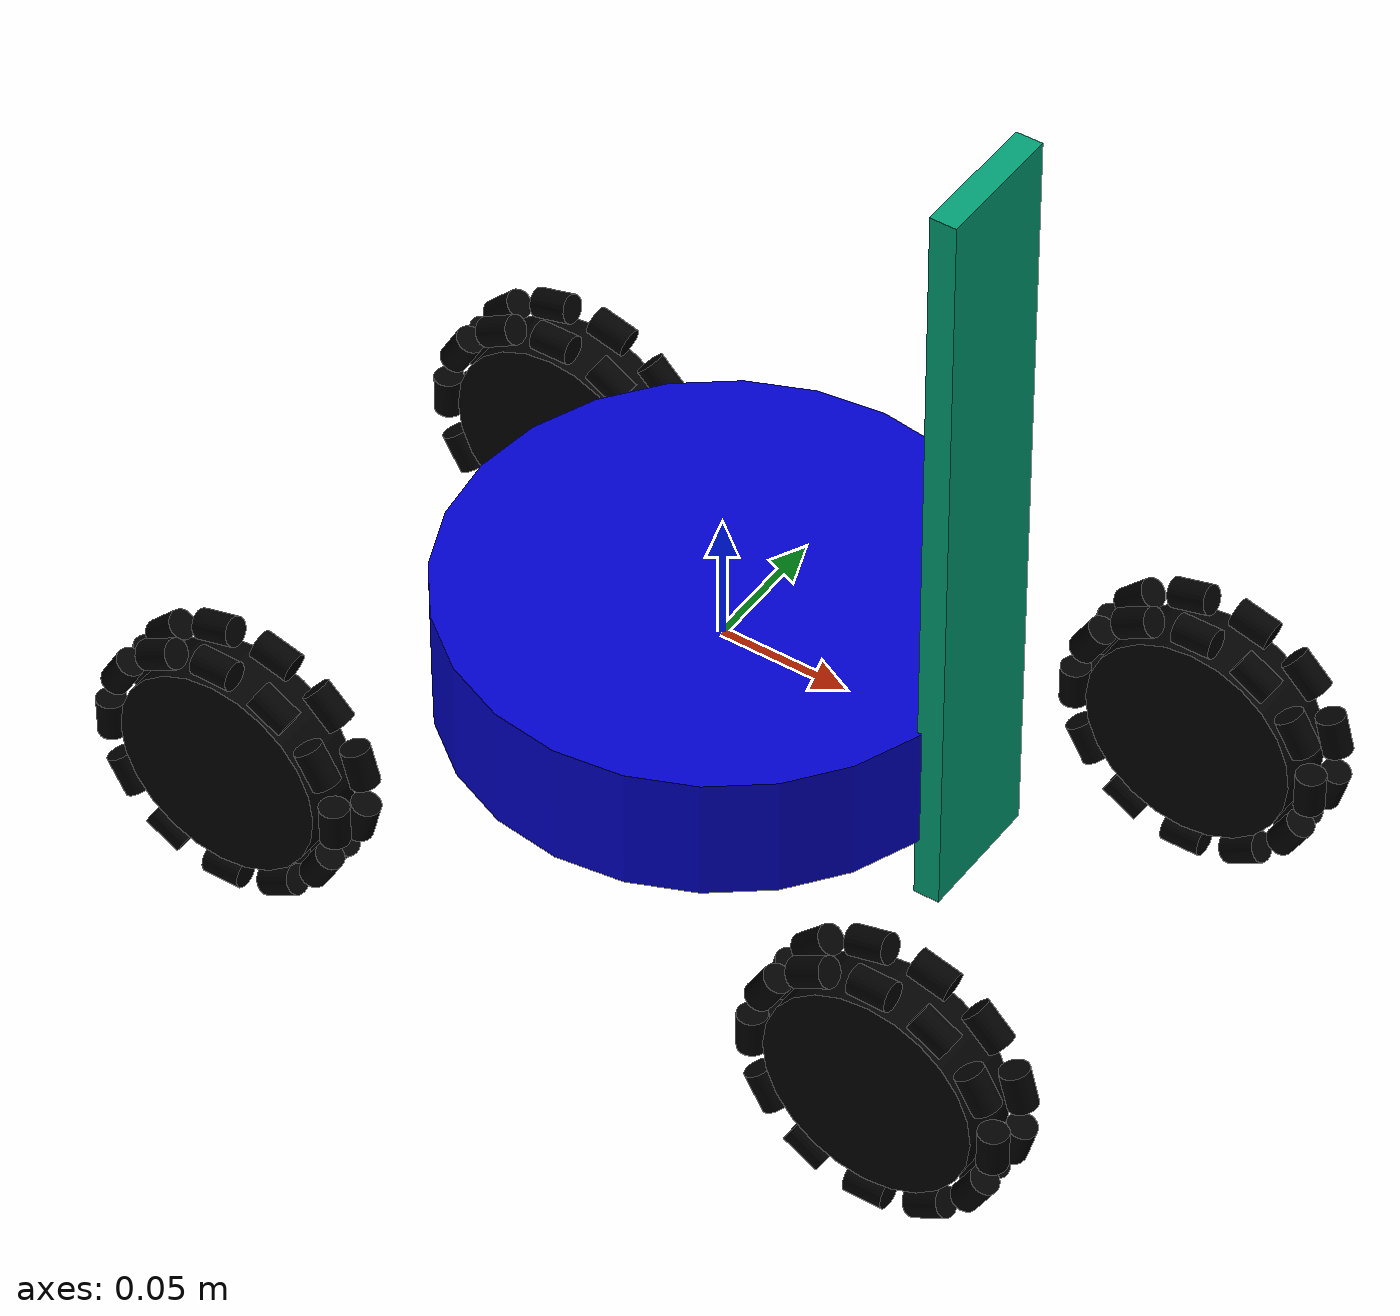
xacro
<?xml version="1.0"?>
<robot name="roscontrol" xmlns:xacro="http://ros.org/wiki/xacro">

    <link name="base_link"></link>

    <xacro:include filename="chassis.urdf.xacro"/>

    <joint name="chassis_joint" type="fixed">
        <parent link="base_link"/>
        <child link="chassis_link"/>
    </joint>

    <xacro:include filename="camera.urdf.xacro"/>

    <xacro:kinect prefix="front" origin_link="base_link" xyz="0.1 0 0.1" rpy="0 0 0"/>

</robot>

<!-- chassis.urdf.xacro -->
<robot name="chassis" xmlns:xacro="http://ros.org/wiki/xacro">
    <xacro:include filename="$(find gazebo_ros_motors)/xacro/dc_motor.xacro"/>

    <xacro:property name="width" value="0.1" />
    <xacro:property name="leglen" value="0.05" />
    <xacro:property name="bodylen" value="0.05" />
    <xacro:property name="baselen" value="0.4" />
    <xacro:property name="wheeldiam" value="0.082" />
    <xacro:property name="pi" value="3.1415" />

    <xacro:property name="wheel_radius" value="0.04" />
    <xacro:property name="wheel_width" value="0.025" />

    <xacro:property name="xyz" value="0 0 0"/>
    <xacro:property name="rpy" value="0 0 0"/>
    <xacro:property name="wheel_xyz" value="0 0 0"/>
    <xacro:property name="wheel_rpy" value="0 0 0"/>
    <xacro:property name="roller_xyz" value="0 .008 -.0465"/>
    <xacro:property name="roller_rpy" value="0 ${-pi/12} 0"/>

    <xacro:property name="roller_diameter" value="0.0055" />
    <xacro:property name="roller_width" value="0.015" />

    <xacro:property name="roller_side_length" value="0.0088"/>
    <xacro:property name="roller_radius" value=".0475"/>

    <material name="blue">
        <color rgba="0 0 0.8 1"/>
    </material>

    <material name="black">
        <color rgba="0 0 0 1"/>
    </material>

    <material name="white">
        <color rgba="1 1 1 1"/>
    </material>

    <xacro:macro name="chassis_inertial" params="mass">
        <inertial>
            <mass value="${mass}" />
            <inertia ixx="0.5" ixy="0.0" ixz="0.0" iyy="0.3" iyz="0.0" izz="0.5" />
        </inertial>
    </xacro:macro>

    <xacro:macro name="roller_inertial" params="mass">
        <inertial>
            <mass value="${mass}" />
            <inertia ixx="0.00001" ixy="0.0" ixz="0.0" iyy="0.00001" iyz="0.0" izz="0.00001" />
        </inertial>
    </xacro:macro>

    <link name="chassis_link">
        <visual>
            <origin xyz="0 0 0" rpy="0 0 0" />
            <geometry>
                <cylinder radius="${width}" length="${bodylen}"/>
            </geometry>
            <material name="blue"/>
        </visual>
        <collision>
            <origin xyz="0 0 0" rpy="0 0 0" />
            <geometry>
                <cylinder radius="${width}" length="${bodylen}"/>
            </geometry>
        </collision>
        <xacro:chassis_inertial mass="10"/>
    </link>

    <xacro:macro name="roller" params="prefix suffix theta side">
        <link name="${prefix}_${suffix}_roller">
            <visual>
                <origin xyz="0 0 0" rpy="0 ${pi/2} 0" />
                <geometry>
                    <cylinder radius="${roller_diameter}" length="${roller_width}"/>
                </geometry>
                <material name="black"/>
            </visual>
            <collision>
                <origin xyz="0 0 0" rpy="0 ${pi/2} 0" />
                <geometry>
                    <cylinder radius="${roller_diameter}" length="${roller_width}"/>
                </geometry>
            </collision>
            <xacro:roller_inertial mass="0.001"/>
        </link>
        <joint name="${prefix}_${suffix}_roller_joint" type="continuous">
            <axis xyz="1 0 0" />
            <parent link="${prefix}_wheel"/>
            <child link="${prefix}_${suffix}_roller"/>
            <origin xyz="${sin(theta)*roller_radius} ${roller_side_length*side} ${cos(theta)*roller_radius}" rpy="0 ${theta} 0"/>
            <dynamics damping="0.0001" />
        </joint>
        <!-- This block provides the simulator (Gazebo) with information on a few additional
        physical properties. See http://gazebosim.org/tutorials/?tut=ros_urdf for more-->
        <gazebo reference="${prefix}_${suffix}_roller">
            <mu1 value="20.0"/>
            <mu2 value="10.0"/>
            <material>Gazebo/Grey</material>
        </gazebo>

        <!-- This block connects the wheel joint to an actuator (motor), which informs both
        simulation and visualization of the robot -->
    </xacro:macro>

    <xacro:macro name="wheel" params="prefix suffix reflect reflectX">
        <link name="${prefix}_${suffix}_wheel">
            <visual>
                <origin xyz="0 0 0" rpy="${pi/2} 0 0" />
                <geometry>
                    <cylinder radius="${wheeldiam/2}" length="${wheel_width}"/>
                </geometry>
                <material name="black"/>
            </visual>
            <collision>
                <origin xyz="0 0 0" rpy="${pi/2} 0 0" />
                <geometry>
                    <cylinder radius="${wheeldiam/2}" length="${wheel_width}"/>
                </geometry>
            </collision>
            <inertial>
                <mass value="0.01" />
                <inertia ixx="0.001" ixy="0.0" ixz="0.0" iyy="0.001" iyz="0.0" izz="0.001" />
            </inertial>
        </link>

        <link name="${prefix}_${suffix}_shaft">
        </link>
        <joint name="${prefix}_${suffix}_shaft_joint" type="fixed">
            <parent link="${prefix}_${suffix}_shaft"/>
            <child link="${prefix}_${suffix}_wheel"/>
            <origin xyz="0 0 0" rpy="${pi/2} 0 0"/>
        </joint>

        <xacro:dc_motor motor_name="motor_${suffix}_${prefix}" parent_link="chassis_link" child_link="${prefix}_${suffix}_shaft">
            <xacro:property name="params_yaml" value="$(find simulation)/config/v5_motor.yaml"/>
            <origin xyz="${baselen*reflect/3} ${.1*reflectX} -.05" rpy="${-pi/2} 0 0"/>
        </xacro:dc_motor>

        <gazebo reference="${prefix}_${suffix}_wheel">
            <material>Gazebo/Green</material>
        </gazebo>

        <xacro:roller prefix="${prefix}_${suffix}" suffix="right_one" theta="${pi * ( 1/6)}" side="-1"/>

        <xacro:roller prefix="${prefix}_${suffix}" suffix="right_two" theta="${pi * ( 2/6)}" side="-1"/>
        <xacro:roller prefix="${prefix}_${suffix}" suffix="right_thr" theta="${pi * ( 3/6)}" side="-1"/>
        <xacro:roller prefix="${prefix}_${suffix}" suffix="right_for" theta="${pi * ( 4/6)}" side="-1"/>
        <xacro:roller prefix="${prefix}_${suffix}" suffix="right_fve" theta="${pi * ( 5/6)}" side="-1"/>
        <xacro:roller prefix="${prefix}_${suffix}" suffix="right_six" theta="${pi * ( 6/6)}" side="-1"/>
        <xacro:roller prefix="${prefix}_${suffix}" suffix="right_svn" theta="${pi * ( 7/6)}" side="-1"/>
        <xacro:roller prefix="${prefix}_${suffix}" suffix="right_ate" theta="${pi * ( 8/6)}" side="-1"/>
        <xacro:roller prefix="${prefix}_${suffix}" suffix="right_nne" theta="${pi * ( 9/6)}" side="-1"/>
        <xacro:roller prefix="${prefix}_${suffix}" suffix="right_ten" theta="${pi * (10/6)}" side="-1"/>
        <xacro:roller prefix="${prefix}_${suffix}" suffix="right_lvn" theta="${pi * (11/6)}" side="-1"/>
        <xacro:roller prefix="${prefix}_${suffix}" suffix="right_wlv" theta="${pi * (12/6)}" side="-1"/>

        <xacro:roller prefix="${prefix}_${suffix}" suffix="left_one" theta="${pi * ( 1/6) + ( pi / 12 )}" side="1"/>
        <xacro:roller prefix="${prefix}_${suffix}" suffix="left_two" theta="${pi * ( 2/6) + ( pi / 12 )}" side="1"/>
        <xacro:roller prefix="${prefix}_${suffix}" suffix="left_thr" theta="${pi * ( 3/6) + ( pi / 12 )}" side="1"/>
        <xacro:roller prefix="${prefix}_${suffix}" suffix="left_for" theta="${pi * ( 4/6) + ( pi / 12 )}" side="1"/>
        <xacro:roller prefix="${prefix}_${suffix}" suffix="left_fve" theta="${pi * ( 5/6) + ( pi / 12 )}" side="1"/>
        <xacro:roller prefix="${prefix}_${suffix}" suffix="left_six" theta="${pi * ( 6/6) + ( pi / 12 )}" side="1"/>
        <xacro:roller prefix="${prefix}_${suffix}" suffix="left_svn" theta="${pi * ( 7/6) + ( pi / 12 )}" side="1"/>
        <xacro:roller prefix="${prefix}_${suffix}" suffix="left_ate" theta="${pi * ( 8/6) + ( pi / 12 )}" side="1"/>
        <xacro:roller prefix="${prefix}_${suffix}" suffix="left_nne" theta="${pi * ( 9/6) + ( pi / 12 )}" side="1"/>
        <xacro:roller prefix="${prefix}_${suffix}" suffix="left_ten" theta="${pi * (10/6) + ( pi / 12 )}" side="1"/>
        <xacro:roller prefix="${prefix}_${suffix}" suffix="left_lvn" theta="${pi * (11/6) + ( pi / 12 )}" side="1"/>
        <xacro:roller prefix="${prefix}_${suffix}" suffix="left_wlv" theta="${pi * (12/6) + ( pi / 12 )}" side="1"/>

    </xacro:macro>

    <xacro:wheel prefix="left" suffix="front"   reflect="1" reflectX="1"/>
    <xacro:wheel prefix="left" suffix="back"   reflect="-1" reflectX="1"/>
    <xacro:wheel prefix="right" suffix="front" reflect= "1" reflectX= "-1"/>
    <xacro:wheel prefix="right" suffix="back" reflect= "-1" reflectX= "-1"/>

    <gazebo>
        <plugin name="p3d_base_controller" filename="libgazebo_ros_p3d.so">
            <alwaysOn>true</alwaysOn>
            <updateRate>50.0</updateRate>
            <bodyName>chassis_link</bodyName>
            <topicName>ground_truth/state</topicName>
            <gaussianNoise>0.01</gaussianNoise>
            <frameName>world</frameName>
            <xyzOffsets>0 0 0</xyzOffsets>
            <rpyOffsets>0 0 0</rpyOffsets>
        </plugin>
    </gazebo>

</robot>

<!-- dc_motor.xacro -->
<robot xmlns:xacro="http://www.ros.org/wiki/xacro">

<xacro:macro name="dc_motor" params="motor_name parent_link child_link *origin *axis">
  <xacro:property name="motor_param" value="${xacro.load_yaml(params_yaml)}"/>
  <joint name="${motor_name}" type="continuous">
      <parent link="${parent_link}"/>
      <child link="${child_link}"/>
      <xacro:insert_block name="origin"/>
      <xacro:insert_block name="axis"/>
      <dynamics damping="${motor_param['joint_damping']}" friction="${motor_param['joint_friction']}"/>
  </joint>
  <gazebo reference="${motor_name}">
    <provideFeedback>true</provideFeedback>
  </gazebo>
  <gazebo>
    <plugin name="${motor_name}_plugin" filename="libgazebo_ros_dc_motor.so">
      <motor_shaft_joint>${motor_name}</motor_shaft_joint>
      <motor_wrench_frame>${child_link}</motor_wrench_frame>
      <command_topic>${motor_name}/command</command_topic>
      <velocity_topic>${motor_name}/velocity</velocity_topic>
      <encoder_topic>${motor_name}/encoder</encoder_topic>
      <current_topic>${motor_name}/current</current_topic>
      <supply_topic>${motor_name}/supply_voltage</supply_topic>
      <publish_encoder>${motor_param['publish_encoder']}</publish_encoder>
      <publish_velocity>${motor_param['publish_velocity']}</publish_velocity>
      <publish_current>${motor_param['publish_current']}</publish_current>
	      <!-- Nuevo, editado -->
	      <!-- Nuevo, editado -->
      <publish_motor_joint_state>${motor_param['publish_motor_joint_state']}</publish_motor_joint_state>
      <update_rate>${motor_param['update_rate']}</update_rate>
      <motor_nominal_voltage>${motor_param['motor_nominal_voltage']}</motor_nominal_voltage>
      <moment_of_inertia>${motor_param['moment_of_inertia']}</moment_of_inertia>
      <armature_damping_ratio>${motor_param['armature_damping_ratio']}</armature_damping_ratio>
      <electromotive_force_constant>${motor_param['electromotive_force_constant']}</electromotive_force_constant>
      <electric_resistance>${motor_param['electric_resistance']}</electric_resistance>
      <electric_inductance>${motor_param['electric_inductance']}</electric_inductance>
      <gear_ratio>${motor_param['gear_ratio']}</gear_ratio>
      <encoder_ppr>${motor_param['encoder_ppr']}</encoder_ppr>
      <velocity_noise>${motor_param['velocity_noise']}</velocity_noise>
      <rosDebugLevel>Debug</rosDebugLevel>
    </plugin>
  </gazebo>

</xacro:macro>

</robot>

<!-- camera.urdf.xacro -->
<robot name="chassis" xmlns:xacro="http://ros.org/wiki/xacro">

    <xacro:property name="M_PI" value="3.1415926535897931" />
    <xacro:macro name="kinect" params="prefix origin_link xyz rpy">

    <link name="${prefix}_camera_link">
      <visual>
        <origin xyz="0 0 0" rpy="0 0 0"/>
        <geometry>
          <box size="0.01 0.05 0.3"/>
        </geometry>
      </visual>
      <collision>
        <origin xyz="0 0 0" rpy="0 0 0"/>
        <geometry>
          <box size="0.01 0.05 0.3"/>
        </geometry>
      </collision>
      <inertial>
        <mass value="0.300" />
        <inertia
          ixx="0.001" ixy="0" ixz="0"
          iyy="0.001" iyz="0"
          izz="0.01" />
      </inertial>
    </link>

    <joint name="${prefix}_camera_joint" type="fixed">
        <parent link="${origin_link}"/>
        <child link="${prefix}_camera_link"/>
        <origin rpy="${rpy}" xyz="${xyz}"/>
    </joint>

    <link name="${prefix}_lens_link"></link>
    <joint name="${prefix}_lens_joint" type="fixed">
        <parent link="${prefix}_camera_link"/>
        <child link="${prefix}_lens_link"/>
        <origin xyz="0 0 0" rpy="-1.57 0 -1.57"/>
    </joint>

        <!-- camera -->
    <gazebo reference="${prefix}_camera_link">
      <sensor type="depth" name="camera_link_sensor">
        <!-- offset between camera_link and camera_depth_optical_link -->
        <!-- additional mm offsets added through inspection -->
        <pose>-0.001 -0.045 0.001 -0.000 0 1.57</pose>
        <always_on>true</always_on>
        <update_rate>15.0</update_rate>
        <camera>
          <horizontal_fov>${57.0*M_PI/180.0}</horizontal_fov>
          <image>
            <format>R8G8B8</format>
            <width>640</width>
            <height>480</height>
          </image>
          <clip>
            <near>0.01</near>
            <far>5</far>
          </clip>
        </camera>
        <plugin name="kinect_camera" filename="libgazebo_ros_openni_kinect.so">
          <alwaysOn>true</alwaysOn>
          <updateRate>15.0</updateRate>
          <cameraName>${prefix}_camera</cameraName>
          <frameName>GT/${prefix}_lens_link</frameName>

          <imageTopicName>${prefix}_camera/rgb/image_rect_color</imageTopicName>
          <cameraInfoTopicName>${prefix}_camera/rgb/camera_info</cameraInfoTopicName>

          <depthImageTopicName>${prefix}_camera/depth_registered/image_raw</depthImageTopicName>
          <depthImageCameraInfoTopicName>${prefix}_camera/depth_registered/camera_info</depthImageCameraInfoTopicName>

          <pointCloudTopicName>${prefix}_camera/depth/points</pointCloudTopicName>
          <pointCloudCutoff>0.5</pointCloudCutoff>
          <distortionK1>0.00000001</distortionK1>
          <distortionK2>0.00000001</distortionK2>
          <distortionK3>0.00000001</distortionK3>
          <distortionT1>0.00000001</distortionT1>
          <distortionT2>0.00000001</distortionT2>
        </plugin>
      </sensor>
    </gazebo>
    </xacro:macro>

</robot>
